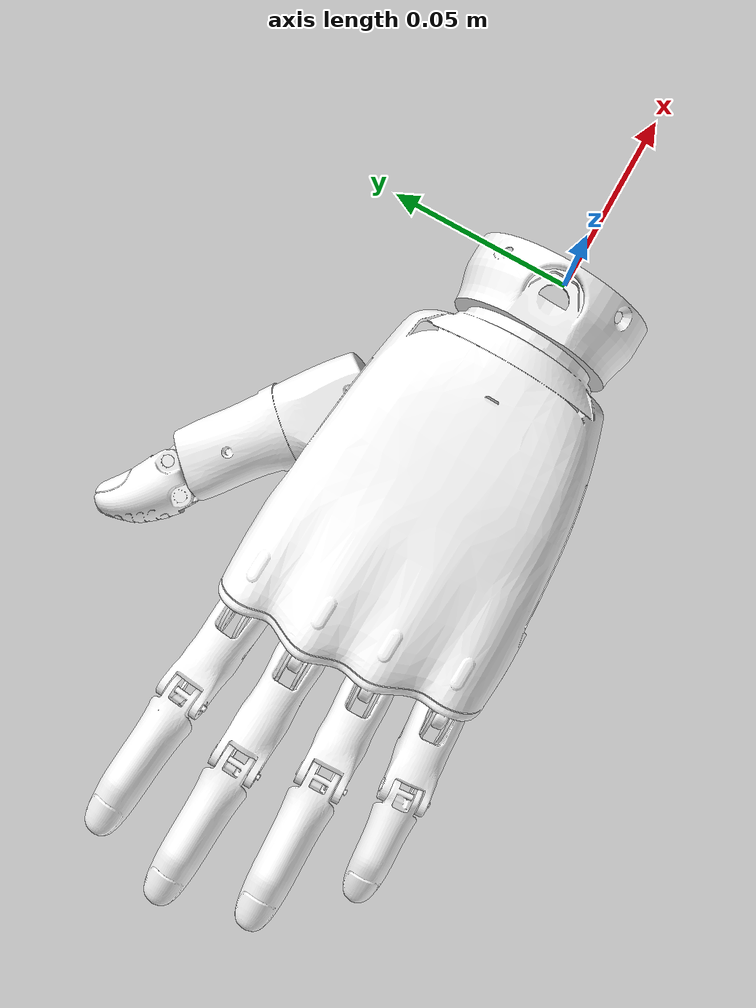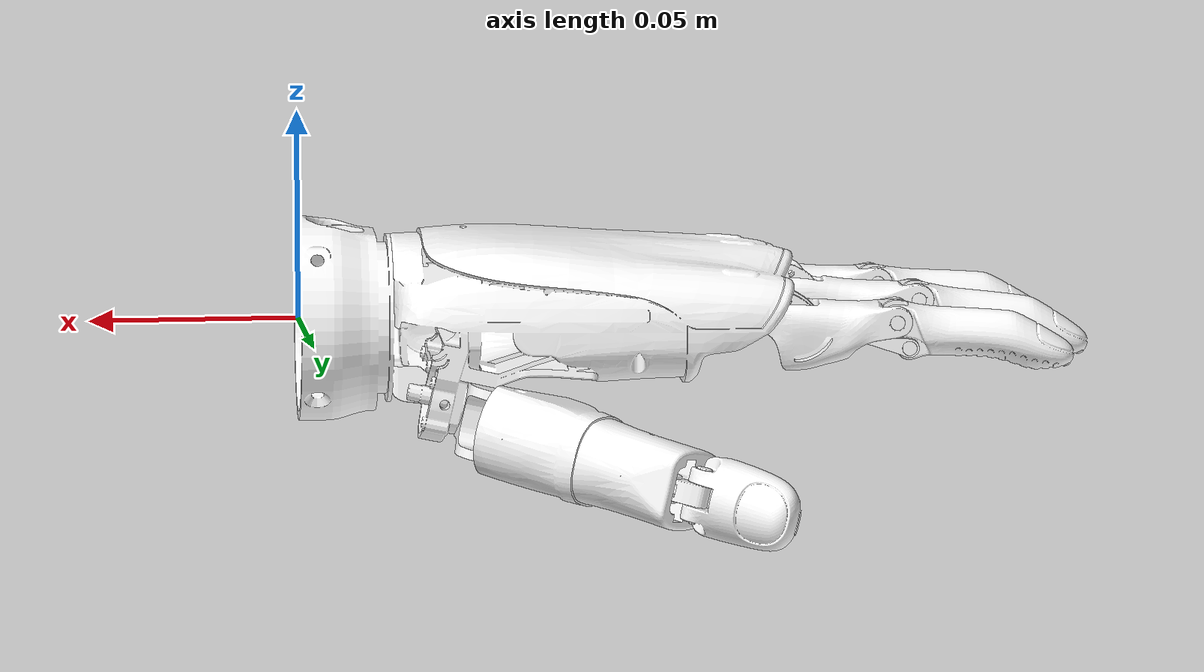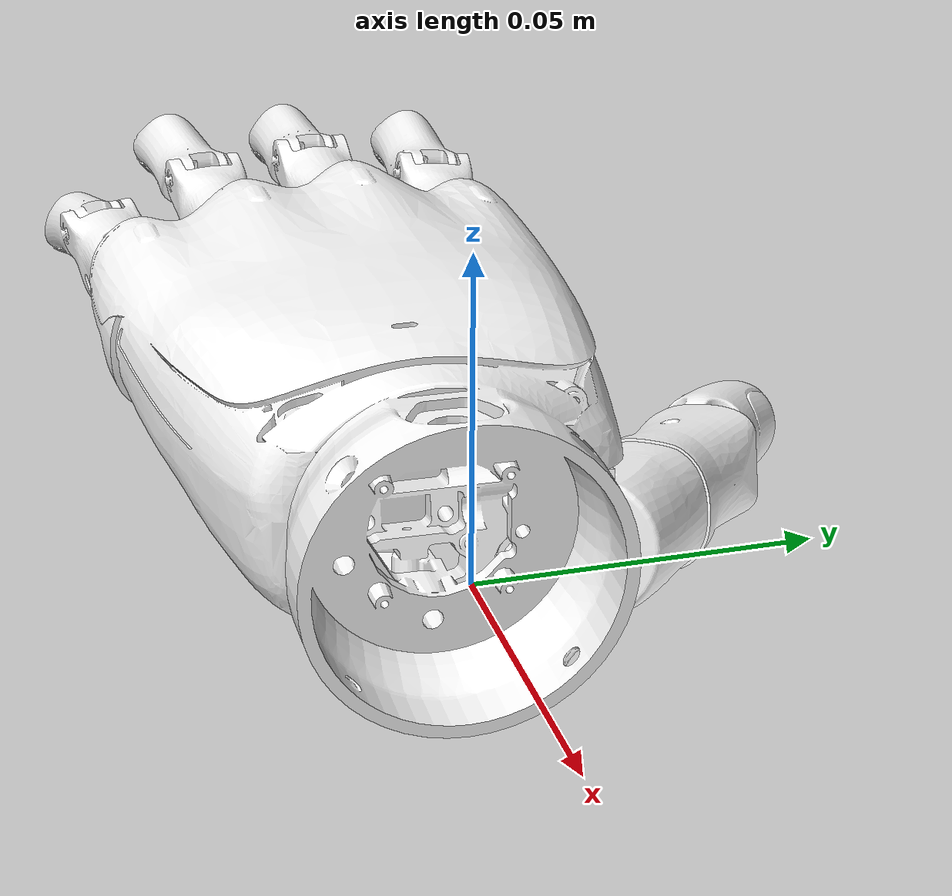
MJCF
<mujoco model="rohand_left">
  <compiler angle="radian"/>
  <asset>
    <mesh name="base_link" content_type="model/stl" file="../assets/meshes_l/base_link.STL"/>
    <mesh name="if_proximal_link" content_type="model/stl" file="../assets/meshes_l/if_proximal_link.STL"/>
    <mesh name="if_distal_link" content_type="model/stl" file="../assets/meshes_l/if_distal_link.STL"/>
    <mesh name="if_connecting_link" content_type="model/stl" file="../assets/meshes_l/if_connecting_link.STL"/>
    <mesh name="mf_proximal_link" content_type="model/stl" file="../assets/meshes_l/mf_proximal_link.STL"/>
    <mesh name="mf_distal_link" content_type="model/stl" file="../assets/meshes_l/mf_distal_link.STL"/>
    <mesh name="mf_connecting_link" content_type="model/stl" file="../assets/meshes_l/mf_connecting_link.STL"/>
    <mesh name="rf_proximal_link" content_type="model/stl" file="../assets/meshes_l/rf_proximal_link.STL"/>
    <mesh name="rf_distal_link" content_type="model/stl" file="../assets/meshes_l/rf_distal_link.STL"/>
    <mesh name="rf_connecting_link" content_type="model/stl" file="../assets/meshes_l/rf_connecting_link.STL"/>
    <mesh name="lf_proximal_link" content_type="model/stl" file="../assets/meshes_l/lf_proximal_link.STL"/>
    <mesh name="lf_distal_link" content_type="model/stl" file="../assets/meshes_l/lf_distal_link.STL"/>
    <mesh name="lf_connecting_link" content_type="model/stl" file="../assets/meshes_l/lf_connecting_link.STL"/>
    <mesh name="th_root_link" content_type="model/stl" file="../assets/meshes_l/th_root_link.STL"/>
    <mesh name="th_slider_connecting_link" content_type="model/stl" file="../assets/meshes_l/th_slider_connecting_link.STL"/>
    <mesh name="th_slider_link" content_type="model/stl" file="../assets/meshes_l/th_slider_link.STL"/>
    <mesh name="th_connecting_link" content_type="model/stl" file="../assets/meshes_l/th_connecting_link.STL"/>
    <mesh name="th_distal_link" content_type="model/stl" file="../assets/meshes_l/th_distal_link.STL"/>
    <mesh name="th_proximal_link" content_type="model/stl" file="../assets/meshes_l/th_proximal_link.STL"/>
  </asset>

  <worldbody>
    <body name="base_link" gravcomp="1">
      <geom type="mesh" rgba="1 1 1 1" mesh="base_link"/>
    </body>
    <body name="if_proximal_link" pos="-0.10701 0.030104 0.0030149">
      <inertial pos="-0.0159453 0.00146643 -0.00260483" quat="0.0676638 0.736881 -0.00970053 0.672558" mass="0.0205167" diaginertia="2.03107e-07 1.89792e-07 7.44394e-08"/>
      <joint name="if_proximal_link" pos="0 0 0" axis="-0.10529 -0.990658 0.0866698" damping="0.01"/>
      <geom type="mesh" rgba="1 1 1 1" mesh="if_proximal_link"/>
      <body name="if_distal_link" pos="-0.032501 0.0031213 -0.00036051">
        <inertial pos="-0.0195363 0.00200908 -0.0043624" quat="0.584403 0.45847 0.455738 0.490491" mass="0.0375199" diaginertia="4.17262e-06 4.15643e-06 5.91812e-07"/>
        <joint name="if_distal_link" pos="0 0 0" axis="0.10529 0.990658 -0.0866698" damping="0.01"/>
        <geom type="mesh" rgba="1 1 1 1" mesh="if_distal_link"/>
      </body>
    </body>
    <body name="if_connecting_link" pos="-0.11386 0.031177 0.006969">
      <inertial pos="-0.0139984 0.000921876 -0.00646817" quat="0.629483 0.395475 0.403814 0.533184" mass="0.00266925" diaginertia="1.97462e-07 1.95007e-07 2.63266e-8"/>
      <joint name="if_connecting_link" pos="0 0 0" axis="0.10529 0.990658 -0.0866698"/>
      <geom type="mesh" rgba="1 1 1 1" mesh="if_connecting_link"/>
    </body>
    <body name="mf_proximal_link" pos="-0.1104 0.011987 0.0069142">
      <inertial pos="-0.0184872 0.000664075 -0.00413876" quat="0.0137683 0.704482 -0.0116507 0.709492" mass="0.0248791" diaginertia="2.93058e-07 2.84348e-07 9.05441e-08"/>
      <joint name="mf_proximal_link" pos="0 0 0" axis="-0.0356841 -0.999363 -0.000165031" damping="0.01"/>
      <geom type="mesh" rgba="1 1 1 1" mesh="mf_proximal_link"/>
      <body name="mf_distal_link" pos="-0.037422 0.0010322 -0.0023446">
        <inertial pos="-0.0193186 0.00116857 -0.00549271" quat="0.56389 0.450757 0.430878 0.541471" mass="0.0375194" diaginertia="4.17262e-06 4.15643e-06 5.91816e-07"/>
        <joint name="mf_distal_link" pos="0 0 0" axis="0.0443199 0.999017 -0.0010438" damping="0.01"/>
        <geom type="mesh" rgba="1 1 1 1" mesh="mf_distal_link"/>
      </body>
    </body>
    <body name="mf_connecting_link" pos="-0.11731 0.012233 0.010884">
      <inertial pos="-0.0159076 0.000569264 -0.00759578" quat="0.596058 0.403184 0.388949 0.575219" mass="0.00282844" diaginertia="2.82059e-08 2.79486e-08 2.76837e-10"/>
      <joint name="mf_connecting_link" pos="0 0 0" axis="0.0356841 0.999363 0.000165031"/>
      <geom type="mesh" rgba="1 1 1 1" mesh="mf_connecting_link"/>
    </body>
    <body name="rf_proximal_link" pos="-0.1083 -0.0062817 0.0062414">
      <inertial pos="-0.0160016 -0.000547367 -0.00261516" quat="-0.0114948 0.736936 0.0126179 0.675747" mass="0.0205169" diaginertia="2.03109e-07 1.89793e-07 7.44392e-08"/>
      <joint name="rf_proximal_link" pos="0 0 0" axis="0.0341459 -0.999417 0.00015788" damping="0.01"/>
      <geom type="mesh" rgba="1 1 1 1" mesh="rf_proximal_link"/>
      <body name="rf_distal_link" pos="-0.032623 -0.0014134 -0.00038833">
        <inertial pos="-0.0196408 -0.000199457 -0.00435281" quat="0.532111 0.450801 0.462919 0.547122" mass="0.0375201" diaginertia="4.17274e-06 4.15655e-06 5.91819e-07"/>
        <joint name="rf_distal_link" pos="0 0 0" axis="-0.025593 0.999671 -0.0018697" damping="0.01"/>
        <geom type="mesh" rgba="1 1 1 1" mesh="rf_distal_link"/>
      </body>
    </body>
    <body name="rf_connecting_link" pos="-0.11522 -0.0065174 0.01021">
      <inertial pos="-0.0140091 -0.000479662 -0.00649301" quat="0.573604 0.392307 0.406034 0.593472" mass="0.00266925" diaginertia="1.97462e-08 1.95007e-08 2.63266e-10"/>
      <joint name="rf_connecting_link" pos="0 0 0" axis="-0.0341459 0.999417 -0.00015788"/>
      <geom type="mesh" rgba="1 1 1 1" mesh="rf_connecting_link"/>
    </body>
    <body name="lf_proximal_link" pos="-0.10528 -0.024621 0.0039331">
      <inertial pos="-0.0143173 -0.00109225 -0.0033439" quat="-0.064522 0.718999 0.0045611 0.691995" mass="0.0183692" diaginertia="1.53271e-07 1.4097e-07 6.66263e-08"/>
      <joint name="lf_proximal_link" pos="0 0 0" axis="0.0958948 -0.991608 -0.0867078" damping="0.01"/>
      <geom type="mesh" rgba="1 1 1 1" mesh="lf_proximal_link"/>
      <body name="lf_distal_link" pos="-0.02882 -0.0028859 -0.00234">
        <inertial pos="-0.0138444 -0.00050695 -0.00586573" quat="0.538156 0.400573 0.386004 0.633191" mass="0.0242865" diaginertia="1.41796e-06 1.40517e-06 3.27828e-07"/>
        <joint name="lf_distal_link" pos="0 0 0" axis="-0.0958948 0.991608 0.0867078" damping="0.01"/>
        <geom type="mesh" rgba="1 1 1 1" mesh="lf_distal_link"/>
      </body>
    </body>
    <body name="lf_connecting_link" pos="-0.11213 -0.02563 0.0078874">
      <inertial pos="-0.0117585 -0.000496792 -0.00732304" quat="0.560441 0.371422 0.353627 0.650308" mass="0.00253788" diaginertia="1.512e-08 1.48906e-08 2.45782e-10"/>
      <joint name="lf_connecting_link" pos="0 0 0" axis="-0.0958948 0.991608 0.0867078"/>
      <geom type="mesh" rgba="1 1 1 1" mesh="lf_connecting_link"/>
    </body>
    <body name="th_root_link" pos="-0.045615 0.018979 -0.020109">
      <inertial pos="0.00272961 0.00562024 -0.00109272" quat="0.7113 0.572811 0.167062 0.371524" mass="0.0195343" diaginertia="2.53752e-07 2.18568e-07 9.14517e-08"/>
      <joint name="th_root_link" pos="0 0 0" axis="-0.974661 0.033383 -0.22118" range="0 1.57" damping="0.05"/>
      <geom type="mesh" rgba="1 1 1 1" mesh="th_root_link"/>
      <body name="th_slider_connecting_link" pos="-0.011841 0.015536 -0.013425">
        <inertial pos="-0.00023563 0.00534266 0.00790312" quat="0.500057 0.373327 -0.622801 0.471899" mass="0.886531" diaginertia="1.50668e-09 1.35211e-09 1.63977e-10"/>
        <joint name="th_slider_connecting" pos="0 0 0" axis="-0.22107 0.00721281 0.975231" damping="0.05"/>
        <geom type="mesh" rgba="0.72549 0.752941 0.854902 1" mesh="th_slider_connecting_link"/>
        <body name="th_slider_link" pos="0.0027227 0.010581 0.0017161">
          <inertial pos="-0.0143104 0.0113894 0.0034907" quat="0.67618 0.607442 0.215364 0.35695" mass="0.03486787" diaginertia="6.83391e-08 5.52016e-08 1.43803e-08"/>
          <joint name="th_slider_link" pos="0 0 0" axis="-0.22107 0.00721281 0.975231" damping="0.05"/>
          <geom type="mesh" rgba="1 1 1 1" mesh="th_slider_link"/>
          <body name="th_connecting_link" pos="-0.024383 0.022236 0.0011272">
            <inertial pos="-0.00414748 0.00236523 -0.000914308" quat="0.639242 0.551341 0.308142 0.438682" mass="0.0229811" diaginertia="3.74356e-09 2.86744e-09 1.83302e-09"/>
            <joint name="th_connecting_link" pos="0 0 0" axis="-0.22107 0.00721281 0.975231" damping="0.05"/>
            <geom type="mesh" rgba="1 1 1 1" mesh="th_connecting_link"/>
            <body name="th_distal_link" pos="-0.0078212 0.0039766 -0.0020592">
              <inertial pos="-0.011245 0.0024881 -0.00230787" quat="0.677679 0.610049 0.210471 0.352552" mass="0.1860659" diaginertia="2.89048e-05 2.59239e-05 1.67746e-05"/>
              <joint name="th_distal_link" pos="0 0 0" axis="0.22107 -0.00721301 -0.975231"/>
              <geom type="mesh" rgba="1 1 1 1" mesh="th_distal_link"/>
            </body>
          </body>
          <body name="th_proximal_link" pos="0.001236 -0.0011628 0.0007502">
            <inertial pos="-0.0135239 0.0073662 0.00323567" quat="0.179855 0.597105 -0.219816 0.750199" mass="0.0646471" diaginertia="2.12792e-04 1.86475e-04 3.81016e-05"/>
            <joint name="th_proximal_link" pos="0 0 0" axis="0.741917 -0.647797 0.172969" type="slide" damping="0.5"/>
            <geom type="mesh" rgba="1 1 1 1" mesh="th_proximal_link"/>
          </body>
        </body>
      </body>
    </body>
  </worldbody>

  <contact>
    <exclude body1="base_link" body2="if_proximal_link"/>
    <exclude body1="base_link" body2="if_distal_link"/>
    <exclude body1="base_link" body2="if_connecting_link"/>
    <exclude body1="if_connecting_link" body2="if_proximal_link"/>
    <exclude body1="if_connecting_link" body2="if_distal_link"/>
    <exclude body1="if_proximal_link" body2="if_distal_link"/>
    <exclude body1="base_link" body2="mf_proximal_link"/>
    <exclude body1="base_link" body2="mf_distal_link"/>
    <exclude body1="base_link" body2="mf_connecting_link"/>
    <exclude body1="mf_connecting_link" body2="mf_proximal_link"/>
    <exclude body1="mf_connecting_link" body2="mf_distal_link"/>
    <exclude body1="mf_proximal_link" body2="mf_distal_link"/>
    <exclude body1="base_link" body2="rf_proximal_link"/>
    <exclude body1="base_link" body2="rf_distal_link"/>
    <exclude body1="base_link" body2="rf_connecting_link"/>
    <exclude body1="rf_connecting_link" body2="rf_proximal_link"/>
    <exclude body1="rf_connecting_link" body2="rf_distal_link"/>
    <exclude body1="rf_proximal_link" body2="rf_distal_link"/>
    <exclude body1="base_link" body2="lf_proximal_link"/>
    <exclude body1="base_link" body2="lf_distal_link"/>
    <exclude body1="base_link" body2="lf_connecting_link"/>
    <exclude body1="lf_connecting_link" body2="lf_proximal_link"/>
    <exclude body1="lf_connecting_link" body2="lf_distal_link"/>
    <exclude body1="lf_proximal_link" body2="lf_distal_link"/>
    <exclude body1="th_root_link" body2="base_link"/>
    <exclude body1="th_root_link" body2="th_slider_link"/>
    <exclude body1="th_root_link" body2="th_connecting_link"/>
    <exclude body1="th_root_link" body2="th_distal_link"/>
    <exclude body1="th_root_link" body2="th_slider_link"/>
    <exclude body1="th_root_link" body2="th_proximal_link"/>
    <exclude body1="th_root_link" body2="th_slider_connecting_link"/>
    <exclude body1="th_slider_connecting_link" body2="base_link"/>
    <exclude body1="th_slider_connecting_link" body2="th_slider_link"/>
    <exclude body1="th_slider_connecting_link" body2="th_connecting_link"/>
    <exclude body1="th_slider_connecting_link" body2="th_distal_link"/>
    <exclude body1="th_slider_connecting_link" body2="th_proximal_link"/>
    <exclude body1="th_slider_link" body2="base_link"/>
    <exclude body1="th_slider_link" body2="th_connecting_link"/>
    <exclude body1="th_slider_link" body2="th_distal_link"/>
    <exclude body1="th_slider_link" body2="th_proximal_link"/>
    <exclude body1="th_connecting_link" body2="base_link"/>
    <exclude body1="th_connecting_link" body2="th_distal_link"/>
    <exclude body1="th_connecting_link" body2="th_proximal_link"/>
    <exclude body1="th_distal_link" body2="base_link"/>
    <exclude body1="th_distal_link" body2="th_proximal_link"/>
    <exclude body1="th_proximal_link" body2="base_link"/>
  </contact>

  <equality>
    <connect body1="if_distal_link" body2="if_connecting_link" anchor="-0.0028 0.001 -0.007" solimp="0.95 0.99 0.001" solref="0.005 1"/>
    <connect body1="mf_distal_link" body2="mf_connecting_link" anchor="-0.0028 0.001 -0.00734" solimp="0.95 0.99 0.001" solref="0.005 1"/>
    <connect body1="rf_distal_link" body2="rf_connecting_link" anchor="-0.0028 0.001 -0.00734" solimp="0.95 0.99 0.001" solref="0.005 1"/>
    <connect body1="lf_distal_link" body2="lf_connecting_link" anchor="-0.0028 0.001 -0.007" solimp="0.95 0.99 0.001" solref="0.005 1"/>
    <connect body1="th_proximal_link" body2="th_root_link" anchor="0.0045 -0.008 0.018" solimp="0.8 0.99 0.001" solref="0.001 1"/>
    <connect body1="th_distal_link" body2="th_proximal_link" anchor="-0.008 -0.008 0.002" solimp="0.99 0.99 0.001" solref="0.0005 1"/>
  </equality>

  <actuator>
    <position name="index_finger" joint="if_proximal_link" kp="1" ctrlrange="0 1.57"/>
    <position name="middle_finger" joint="mf_proximal_link" kp="1" ctrlrange="0 1.57"/>
    <position name="ring_finger" joint="rf_proximal_link" kp="1" ctrlrange="0 1.57"/>
    <position name="little_finger" joint="lf_proximal_link" kp="1" ctrlrange="0 1.5"/>
    <position name="thumb_root" joint="th_root_link" kp="1" ctrlrange="0 1.57"/>
    <position name="thumb" joint="th_slider_connecting" kp="1" ctrlrange="0 1.3"/>
  </actuator>
</mujoco>
